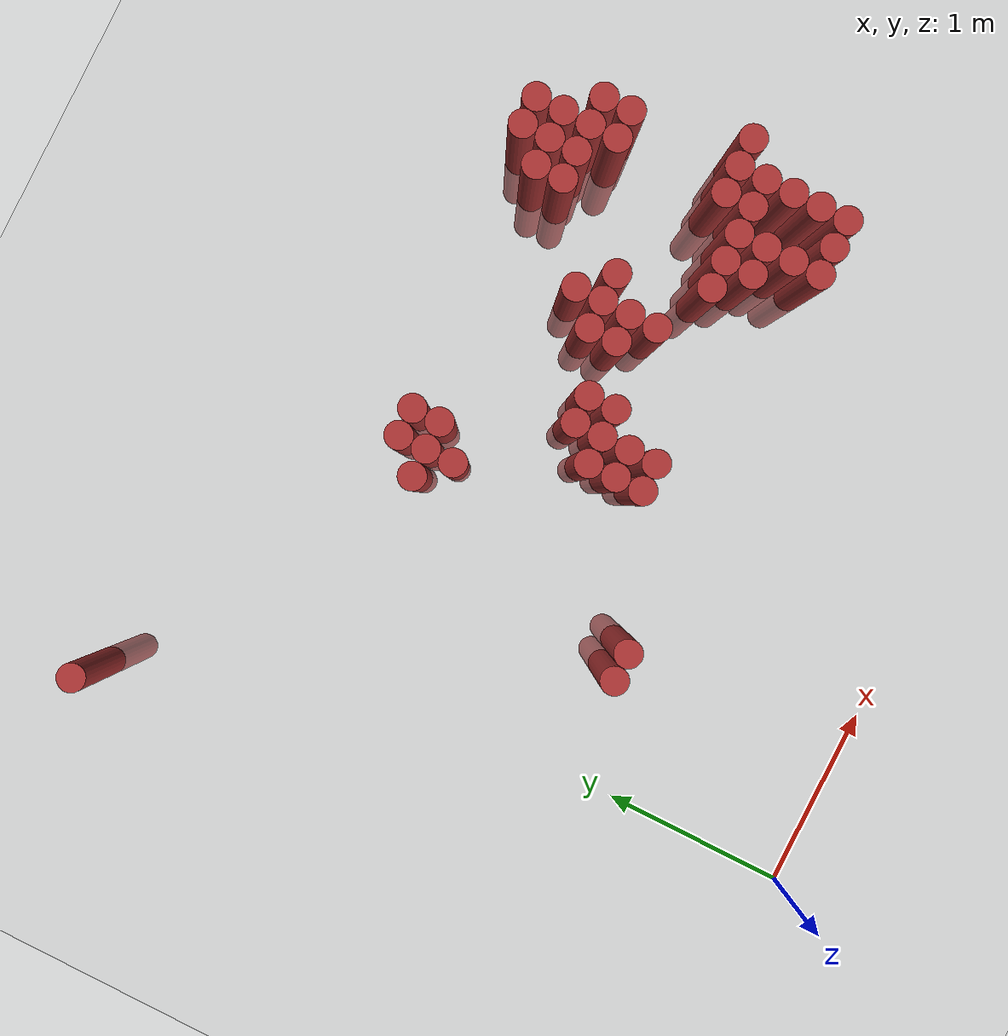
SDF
<sdf version="1.6">
 <world name="default">
  <model name="ground_plane">
   <static>1</static>
   <link name="link">
    <collision name="collision">
     <geometry><plane><normal>0 0 1</normal><size>100 100</size></plane></geometry>
     <surface><friction><ode><mu>100</mu><mu2>50</mu2></ode></friction></surface>
    </collision>
    <visual name="visual">
     <cast_shadows>0</cast_shadows>
     <geometry><plane><normal>0 0 1</normal><size>100 100</size></plane></geometry>
     <material>
      <script><uri>file://media/materials/scripts/gazebo.material</uri><name>Gazebo/Grey</name></script>
     </material>
    </visual>
   </link>
  </model>
  <model name="unit_cylinder_449">
   <static>1</static>
   <pose>-0.575000 3.775000 0.000000 0.000000 0.000000 0.000000</pose>
   <link name="link">
    <inertial>
     <mass>1</mass>
     <inertia><ixx>0.145833</ixx><ixy>0</ixy><ixz>0</ixz><iyy>0.145833</iyy><iyz>0</iyz><izz>0.125</izz></inertia>
    </inertial>
    <collision name="collision">
     <geometry><cylinder><radius>0.075000</radius><length>1.5</length></cylinder></geometry>
    </collision>
    <visual name="visual">
     <geometry><cylinder><radius>0.075000</radius><length>1.5</length></cylinder></geometry>
     <material>
      <ambient>0.648000 0.192000 0.192000 1</ambient>
      <diffuse>0.648000 0.192000 0.192000 1</diffuse>
     </material>
     <material>
      <script><name>Gazebo/Grey</name><uri>file://media/materials/scripts/gazebo.material</uri></script>
     </material>
    </visual>
   </link>
  </model>
  <model name="unit_cylinder_470">
   <static>1</static>
   <pose>0.625000 1.375000 0.000000 0.000000 0.000000 0.000000</pose>
   <link name="link">
    <inertial>
     <mass>1</mass>
     <inertia><ixx>0.145833</ixx><ixy>0</ixy><ixz>0</ixz><iyy>0.145833</iyy><iyz>0</iyz><izz>0.125</izz></inertia>
    </inertial>
    <collision name="collision">
     <geometry><cylinder><radius>0.075000</radius><length>1.5</length></cylinder></geometry>
    </collision>
    <visual name="visual">
     <geometry><cylinder><radius>0.075000</radius><length>1.5</length></cylinder></geometry>
     <material>
      <ambient>0.648000 0.192000 0.192000 1</ambient>
      <diffuse>0.648000 0.192000 0.192000 1</diffuse>
     </material>
     <material>
      <script><name>Gazebo/Grey</name><uri>file://media/materials/scripts/gazebo.material</uri></script>
     </material>
    </visual>
   </link>
  </model>
  <model name="unit_cylinder_473">
   <static>1</static>
   <pose>0.775000 1.375000 0.000000 0.000000 0.000000 0.000000</pose>
   <link name="link">
    <inertial>
     <mass>1</mass>
     <inertia><ixx>0.145833</ixx><ixy>0</ixy><ixz>0</ixz><iyy>0.145833</iyy><iyz>0</iyz><izz>0.125</izz></inertia>
    </inertial>
    <collision name="collision">
     <geometry><cylinder><radius>0.075000</radius><length>1.5</length></cylinder></geometry>
    </collision>
    <visual name="visual">
     <geometry><cylinder><radius>0.075000</radius><length>1.5</length></cylinder></geometry>
     <material>
      <ambient>0.648000 0.192000 0.192000 1</ambient>
      <diffuse>0.648000 0.192000 0.192000 1</diffuse>
     </material>
     <material>
      <script><name>Gazebo/Grey</name><uri>file://media/materials/scripts/gazebo.material</uri></script>
     </material>
    </visual>
   </link>
  </model>
  <model name="unit_cylinder_481">
   <static>1</static>
   <pose>1.075000 2.725000 0.000000 0.000000 0.000000 0.000000</pose>
   <link name="link">
    <inertial>
     <mass>1</mass>
     <inertia><ixx>0.145833</ixx><ixy>0</ixy><ixz>0</ixz><iyy>0.145833</iyy><iyz>0</iyz><izz>0.125</izz></inertia>
    </inertial>
    <collision name="collision">
     <geometry><cylinder><radius>0.075000</radius><length>1.5</length></cylinder></geometry>
    </collision>
    <visual name="visual">
     <geometry><cylinder><radius>0.075000</radius><length>1.5</length></cylinder></geometry>
     <material>
      <ambient>0.648000 0.192000 0.192000 1</ambient>
      <diffuse>0.648000 0.192000 0.192000 1</diffuse>
     </material>
     <material>
      <script><name>Gazebo/Grey</name><uri>file://media/materials/scripts/gazebo.material</uri></script>
     </material>
    </visual>
   </link>
  </model>
  <model name="unit_cylinder_488">
   <static>1</static>
   <pose>1.225000 2.575000 0.000000 0.000000 0.000000 0.000000</pose>
   <link name="link">
    <inertial>
     <mass>1</mass>
     <inertia><ixx>0.145833</ixx><ixy>0</ixy><ixz>0</ixz><iyy>0.145833</iyy><iyz>0</iyz><izz>0.125</izz></inertia>
    </inertial>
    <collision name="collision">
     <geometry><cylinder><radius>0.075000</radius><length>1.5</length></cylinder></geometry>
    </collision>
    <visual name="visual">
     <geometry><cylinder><radius>0.075000</radius><length>1.5</length></cylinder></geometry>
     <material>
      <ambient>0.648000 0.192000 0.192000 1</ambient>
      <diffuse>0.648000 0.192000 0.192000 1</diffuse>
     </material>
     <material>
      <script><name>Gazebo/Grey</name><uri>file://media/materials/scripts/gazebo.material</uri></script>
     </material>
    </visual>
   </link>
  </model>
  <model name="unit_cylinder_489">
   <static>1</static>
   <pose>1.225000 2.725000 0.000000 0.000000 0.000000 0.000000</pose>
   <link name="link">
    <inertial>
     <mass>1</mass>
     <inertia><ixx>0.145833</ixx><ixy>0</ixy><ixz>0</ixz><iyy>0.145833</iyy><iyz>0</iyz><izz>0.125</izz></inertia>
    </inertial>
    <collision name="collision">
     <geometry><cylinder><radius>0.075000</radius><length>1.5</length></cylinder></geometry>
    </collision>
    <visual name="visual">
     <geometry><cylinder><radius>0.075000</radius><length>1.5</length></cylinder></geometry>
     <material>
      <ambient>0.648000 0.192000 0.192000 1</ambient>
      <diffuse>0.648000 0.192000 0.192000 1</diffuse>
     </material>
     <material>
      <script><name>Gazebo/Grey</name><uri>file://media/materials/scripts/gazebo.material</uri></script>
     </material>
    </visual>
   </link>
  </model>
  <model name="unit_cylinder_490">
   <static>1</static>
   <pose>1.225000 2.875000 0.000000 0.000000 0.000000 0.000000</pose>
   <link name="link">
    <inertial>
     <mass>1</mass>
     <inertia><ixx>0.145833</ixx><ixy>0</ixy><ixz>0</ixz><iyy>0.145833</iyy><iyz>0</iyz><izz>0.125</izz></inertia>
    </inertial>
    <collision name="collision">
     <geometry><cylinder><radius>0.075000</radius><length>1.5</length></cylinder></geometry>
    </collision>
    <visual name="visual">
     <geometry><cylinder><radius>0.075000</radius><length>1.5</length></cylinder></geometry>
     <material>
      <ambient>0.648000 0.192000 0.192000 1</ambient>
      <diffuse>0.648000 0.192000 0.192000 1</diffuse>
     </material>
     <material>
      <script><name>Gazebo/Grey</name><uri>file://media/materials/scripts/gazebo.material</uri></script>
     </material>
    </visual>
   </link>
  </model>
  <model name="unit_cylinder_497">
   <static>1</static>
   <pose>1.375000 2.725000 0.000000 0.000000 0.000000 0.000000</pose>
   <link name="link">
    <inertial>
     <mass>1</mass>
     <inertia><ixx>0.145833</ixx><ixy>0</ixy><ixz>0</ixz><iyy>0.145833</iyy><iyz>0</iyz><izz>0.125</izz></inertia>
    </inertial>
    <collision name="collision">
     <geometry><cylinder><radius>0.075000</radius><length>1.5</length></cylinder></geometry>
    </collision>
    <visual name="visual">
     <geometry><cylinder><radius>0.075000</radius><length>1.5</length></cylinder></geometry>
     <material>
      <ambient>0.648000 0.192000 0.192000 1</ambient>
      <diffuse>0.648000 0.192000 0.192000 1</diffuse>
     </material>
     <material>
      <script><name>Gazebo/Grey</name><uri>file://media/materials/scripts/gazebo.material</uri></script>
     </material>
    </visual>
   </link>
  </model>
  <model name="unit_cylinder_498">
   <static>1</static>
   <pose>1.375000 2.875000 0.000000 0.000000 0.000000 0.000000</pose>
   <link name="link">
    <inertial>
     <mass>1</mass>
     <inertia><ixx>0.145833</ixx><ixy>0</ixy><ixz>0</ixz><iyy>0.145833</iyy><iyz>0</iyz><izz>0.125</izz></inertia>
    </inertial>
    <collision name="collision">
     <geometry><cylinder><radius>0.075000</radius><length>1.5</length></cylinder></geometry>
    </collision>
    <visual name="visual">
     <geometry><cylinder><radius>0.075000</radius><length>1.5</length></cylinder></geometry>
     <material>
      <ambient>0.648000 0.192000 0.192000 1</ambient>
      <diffuse>0.648000 0.192000 0.192000 1</diffuse>
     </material>
     <material>
      <script><name>Gazebo/Grey</name><uri>file://media/materials/scripts/gazebo.material</uri></script>
     </material>
    </visual>
   </link>
  </model>
  <model name="unit_cylinder_502">
   <static>1</static>
   <pose>1.525000 1.675000 0.000000 0.000000 0.000000 0.000000</pose>
   <link name="link">
    <inertial>
     <mass>1</mass>
     <inertia><ixx>0.145833</ixx><ixy>0</ixy><ixz>0</ixz><iyy>0.145833</iyy><iyz>0</iyz><izz>0.125</izz></inertia>
    </inertial>
    <collision name="collision">
     <geometry><cylinder><radius>0.075000</radius><length>1.5</length></cylinder></geometry>
    </collision>
    <visual name="visual">
     <geometry><cylinder><radius>0.075000</radius><length>1.5</length></cylinder></geometry>
     <material>
      <ambient>0.648000 0.192000 0.192000 1</ambient>
      <diffuse>0.648000 0.192000 0.192000 1</diffuse>
     </material>
     <material>
      <script><name>Gazebo/Grey</name><uri>file://media/materials/scripts/gazebo.material</uri></script>
     </material>
    </visual>
   </link>
  </model>
  <model name="unit_cylinder_503">
   <static>1</static>
   <pose>1.525000 1.825000 0.000000 0.000000 0.000000 0.000000</pose>
   <link name="link">
    <inertial>
     <mass>1</mass>
     <inertia><ixx>0.145833</ixx><ixy>0</ixy><ixz>0</ixz><iyy>0.145833</iyy><iyz>0</iyz><izz>0.125</izz></inertia>
    </inertial>
    <collision name="collision">
     <geometry><cylinder><radius>0.075000</radius><length>1.5</length></cylinder></geometry>
    </collision>
    <visual name="visual">
     <geometry><cylinder><radius>0.075000</radius><length>1.5</length></cylinder></geometry>
     <material>
      <ambient>0.648000 0.192000 0.192000 1</ambient>
      <diffuse>0.648000 0.192000 0.192000 1</diffuse>
     </material>
     <material>
      <script><name>Gazebo/Grey</name><uri>file://media/materials/scripts/gazebo.material</uri></script>
     </material>
    </visual>
   </link>
  </model>
  <model name="unit_cylinder_504">
   <static>1</static>
   <pose>1.525000 1.975000 0.000000 0.000000 0.000000 0.000000</pose>
   <link name="link">
    <inertial>
     <mass>1</mass>
     <inertia><ixx>0.145833</ixx><ixy>0</ixy><ixz>0</ixz><iyy>0.145833</iyy><iyz>0</iyz><izz>0.125</izz></inertia>
    </inertial>
    <collision name="collision">
     <geometry><cylinder><radius>0.075000</radius><length>1.5</length></cylinder></geometry>
    </collision>
    <visual name="visual">
     <geometry><cylinder><radius>0.075000</radius><length>1.5</length></cylinder></geometry>
     <material>
      <ambient>0.648000 0.192000 0.192000 1</ambient>
      <diffuse>0.648000 0.192000 0.192000 1</diffuse>
     </material>
     <material>
      <script><name>Gazebo/Grey</name><uri>file://media/materials/scripts/gazebo.material</uri></script>
     </material>
    </visual>
   </link>
  </model>
  <model name="unit_cylinder_507">
   <static>1</static>
   <pose>1.675000 1.675000 0.000000 0.000000 0.000000 0.000000</pose>
   <link name="link">
    <inertial>
     <mass>1</mass>
     <inertia><ixx>0.145833</ixx><ixy>0</ixy><ixz>0</ixz><iyy>0.145833</iyy><iyz>0</iyz><izz>0.125</izz></inertia>
    </inertial>
    <collision name="collision">
     <geometry><cylinder><radius>0.075000</radius><length>1.5</length></cylinder></geometry>
    </collision>
    <visual name="visual">
     <geometry><cylinder><radius>0.075000</radius><length>1.5</length></cylinder></geometry>
     <material>
      <ambient>0.648000 0.192000 0.192000 1</ambient>
      <diffuse>0.648000 0.192000 0.192000 1</diffuse>
     </material>
     <material>
      <script><name>Gazebo/Grey</name><uri>file://media/materials/scripts/gazebo.material</uri></script>
     </material>
    </visual>
   </link>
  </model>
  <model name="unit_cylinder_508">
   <static>1</static>
   <pose>1.675000 1.825000 0.000000 0.000000 0.000000 0.000000</pose>
   <link name="link">
    <inertial>
     <mass>1</mass>
     <inertia><ixx>0.145833</ixx><ixy>0</ixy><ixz>0</ixz><iyy>0.145833</iyy><iyz>0</iyz><izz>0.125</izz></inertia>
    </inertial>
    <collision name="collision">
     <geometry><cylinder><radius>0.075000</radius><length>1.5</length></cylinder></geometry>
    </collision>
    <visual name="visual">
     <geometry><cylinder><radius>0.075000</radius><length>1.5</length></cylinder></geometry>
     <material>
      <ambient>0.648000 0.192000 0.192000 1</ambient>
      <diffuse>0.648000 0.192000 0.192000 1</diffuse>
     </material>
     <material>
      <script><name>Gazebo/Grey</name><uri>file://media/materials/scripts/gazebo.material</uri></script>
     </material>
    </visual>
   </link>
  </model>
  <model name="unit_cylinder_509">
   <static>1</static>
   <pose>1.675000 1.975000 0.000000 0.000000 0.000000 0.000000</pose>
   <link name="link">
    <inertial>
     <mass>1</mass>
     <inertia><ixx>0.145833</ixx><ixy>0</ixy><ixz>0</ixz><iyy>0.145833</iyy><iyz>0</iyz><izz>0.125</izz></inertia>
    </inertial>
    <collision name="collision">
     <geometry><cylinder><radius>0.075000</radius><length>1.5</length></cylinder></geometry>
    </collision>
    <visual name="visual">
     <geometry><cylinder><radius>0.075000</radius><length>1.5</length></cylinder></geometry>
     <material>
      <ambient>0.648000 0.192000 0.192000 1</ambient>
      <diffuse>0.648000 0.192000 0.192000 1</diffuse>
     </material>
     <material>
      <script><name>Gazebo/Grey</name><uri>file://media/materials/scripts/gazebo.material</uri></script>
     </material>
    </visual>
   </link>
  </model>
  <model name="unit_cylinder_510">
   <static>1</static>
   <pose>1.675000 2.125000 0.000000 0.000000 0.000000 0.000000</pose>
   <link name="link">
    <inertial>
     <mass>1</mass>
     <inertia><ixx>0.145833</ixx><ixy>0</ixy><ixz>0</ixz><iyy>0.145833</iyy><iyz>0</iyz><izz>0.125</izz></inertia>
    </inertial>
    <collision name="collision">
     <geometry><cylinder><radius>0.075000</radius><length>1.5</length></cylinder></geometry>
    </collision>
    <visual name="visual">
     <geometry><cylinder><radius>0.075000</radius><length>1.5</length></cylinder></geometry>
     <material>
      <ambient>0.648000 0.192000 0.192000 1</ambient>
      <diffuse>0.648000 0.192000 0.192000 1</diffuse>
     </material>
     <material>
      <script><name>Gazebo/Grey</name><uri>file://media/materials/scripts/gazebo.material</uri></script>
     </material>
    </visual>
   </link>
  </model>
  <model name="unit_cylinder_518">
   <static>1</static>
   <pose>1.825000 1.975000 0.000000 0.000000 0.000000 0.000000</pose>
   <link name="link">
    <inertial>
     <mass>1</mass>
     <inertia><ixx>0.145833</ixx><ixy>0</ixy><ixz>0</ixz><iyy>0.145833</iyy><iyz>0</iyz><izz>0.125</izz></inertia>
    </inertial>
    <collision name="collision">
     <geometry><cylinder><radius>0.075000</radius><length>1.5</length></cylinder></geometry>
    </collision>
    <visual name="visual">
     <geometry><cylinder><radius>0.075000</radius><length>1.5</length></cylinder></geometry>
     <material>
      <ambient>0.648000 0.192000 0.192000 1</ambient>
      <diffuse>0.648000 0.192000 0.192000 1</diffuse>
     </material>
     <material>
      <script><name>Gazebo/Grey</name><uri>file://media/materials/scripts/gazebo.material</uri></script>
     </material>
    </visual>
   </link>
  </model>
  <model name="unit_cylinder_519">
   <static>1</static>
   <pose>1.825000 2.125000 0.000000 0.000000 0.000000 0.000000</pose>
   <link name="link">
    <inertial>
     <mass>1</mass>
     <inertia><ixx>0.145833</ixx><ixy>0</ixy><ixz>0</ixz><iyy>0.145833</iyy><iyz>0</iyz><izz>0.125</izz></inertia>
    </inertial>
    <collision name="collision">
     <geometry><cylinder><radius>0.075000</radius><length>1.5</length></cylinder></geometry>
    </collision>
    <visual name="visual">
     <geometry><cylinder><radius>0.075000</radius><length>1.5</length></cylinder></geometry>
     <material>
      <ambient>0.648000 0.192000 0.192000 1</ambient>
      <diffuse>0.648000 0.192000 0.192000 1</diffuse>
     </material>
     <material>
      <script><name>Gazebo/Grey</name><uri>file://media/materials/scripts/gazebo.material</uri></script>
     </material>
    </visual>
   </link>
  </model>
  <model name="unit_cylinder_541">
   <static>1</static>
   <pose>2.125000 2.125000 0.000000 0.000000 0.000000 0.000000</pose>
   <link name="link">
    <inertial>
     <mass>1</mass>
     <inertia><ixx>0.145833</ixx><ixy>0</ixy><ixz>0</ixz><iyy>0.145833</iyy><iyz>0</iyz><izz>0.125</izz></inertia>
    </inertial>
    <collision name="collision">
     <geometry><cylinder><radius>0.075000</radius><length>1.5</length></cylinder></geometry>
    </collision>
    <visual name="visual">
     <geometry><cylinder><radius>0.075000</radius><length>1.5</length></cylinder></geometry>
     <material>
      <ambient>0.648000 0.192000 0.192000 1</ambient>
      <diffuse>0.648000 0.192000 0.192000 1</diffuse>
     </material>
     <material>
      <script><name>Gazebo/Grey</name><uri>file://media/materials/scripts/gazebo.material</uri></script>
     </material>
    </visual>
   </link>
  </model>
  <model name="unit_cylinder_542">
   <static>1</static>
   <pose>2.125000 2.275000 0.000000 0.000000 0.000000 0.000000</pose>
   <link name="link">
    <inertial>
     <mass>1</mass>
     <inertia><ixx>0.145833</ixx><ixy>0</ixy><ixz>0</ixz><iyy>0.145833</iyy><iyz>0</iyz><izz>0.125</izz></inertia>
    </inertial>
    <collision name="collision">
     <geometry><cylinder><radius>0.075000</radius><length>1.5</length></cylinder></geometry>
    </collision>
    <visual name="visual">
     <geometry><cylinder><radius>0.075000</radius><length>1.5</length></cylinder></geometry>
     <material>
      <ambient>0.648000 0.192000 0.192000 1</ambient>
      <diffuse>0.648000 0.192000 0.192000 1</diffuse>
     </material>
     <material>
      <script><name>Gazebo/Grey</name><uri>file://media/materials/scripts/gazebo.material</uri></script>
     </material>
    </visual>
   </link>
  </model>
  <model name="unit_cylinder_546">
   <static>1</static>
   <pose>2.275000 1.975000 0.000000 0.000000 0.000000 0.000000</pose>
   <link name="link">
    <inertial>
     <mass>1</mass>
     <inertia><ixx>0.145833</ixx><ixy>0</ixy><ixz>0</ixz><iyy>0.145833</iyy><iyz>0</iyz><izz>0.125</izz></inertia>
    </inertial>
    <collision name="collision">
     <geometry><cylinder><radius>0.075000</radius><length>1.5</length></cylinder></geometry>
    </collision>
    <visual name="visual">
     <geometry><cylinder><radius>0.075000</radius><length>1.5</length></cylinder></geometry>
     <material>
      <ambient>0.648000 0.192000 0.192000 1</ambient>
      <diffuse>0.648000 0.192000 0.192000 1</diffuse>
     </material>
     <material>
      <script><name>Gazebo/Grey</name><uri>file://media/materials/scripts/gazebo.material</uri></script>
     </material>
    </visual>
   </link>
  </model>
  <model name="unit_cylinder_547">
   <static>1</static>
   <pose>2.275000 2.125000 0.000000 0.000000 0.000000 0.000000</pose>
   <link name="link">
    <inertial>
     <mass>1</mass>
     <inertia><ixx>0.145833</ixx><ixy>0</ixy><ixz>0</ixz><iyy>0.145833</iyy><iyz>0</iyz><izz>0.125</izz></inertia>
    </inertial>
    <collision name="collision">
     <geometry><cylinder><radius>0.075000</radius><length>1.5</length></cylinder></geometry>
    </collision>
    <visual name="visual">
     <geometry><cylinder><radius>0.075000</radius><length>1.5</length></cylinder></geometry>
     <material>
      <ambient>0.648000 0.192000 0.192000 1</ambient>
      <diffuse>0.648000 0.192000 0.192000 1</diffuse>
     </material>
     <material>
      <script><name>Gazebo/Grey</name><uri>file://media/materials/scripts/gazebo.material</uri></script>
     </material>
    </visual>
   </link>
  </model>
  <model name="unit_cylinder_548">
   <static>1</static>
   <pose>2.275000 2.275000 0.000000 0.000000 0.000000 0.000000</pose>
   <link name="link">
    <inertial>
     <mass>1</mass>
     <inertia><ixx>0.145833</ixx><ixy>0</ixy><ixz>0</ixz><iyy>0.145833</iyy><iyz>0</iyz><izz>0.125</izz></inertia>
    </inertial>
    <collision name="collision">
     <geometry><cylinder><radius>0.075000</radius><length>1.5</length></cylinder></geometry>
    </collision>
    <visual name="visual">
     <geometry><cylinder><radius>0.075000</radius><length>1.5</length></cylinder></geometry>
     <material>
      <ambient>0.648000 0.192000 0.192000 1</ambient>
      <diffuse>0.648000 0.192000 0.192000 1</diffuse>
     </material>
     <material>
      <script><name>Gazebo/Grey</name><uri>file://media/materials/scripts/gazebo.material</uri></script>
     </material>
    </visual>
   </link>
  </model>
  <model name="unit_cylinder_549">
   <static>1</static>
   <pose>2.275000 2.425000 0.000000 0.000000 0.000000 0.000000</pose>
   <link name="link">
    <inertial>
     <mass>1</mass>
     <inertia><ixx>0.145833</ixx><ixy>0</ixy><ixz>0</ixz><iyy>0.145833</iyy><iyz>0</iyz><izz>0.125</izz></inertia>
    </inertial>
    <collision name="collision">
     <geometry><cylinder><radius>0.075000</radius><length>1.5</length></cylinder></geometry>
    </collision>
    <visual name="visual">
     <geometry><cylinder><radius>0.075000</radius><length>1.5</length></cylinder></geometry>
     <material>
      <ambient>0.648000 0.192000 0.192000 1</ambient>
      <diffuse>0.648000 0.192000 0.192000 1</diffuse>
     </material>
     <material>
      <script><name>Gazebo/Grey</name><uri>file://media/materials/scripts/gazebo.material</uri></script>
     </material>
    </visual>
   </link>
  </model>
  <model name="unit_cylinder_558">
   <static>1</static>
   <pose>2.425000 2.275000 0.000000 0.000000 0.000000 0.000000</pose>
   <link name="link">
    <inertial>
     <mass>1</mass>
     <inertia><ixx>0.145833</ixx><ixy>0</ixy><ixz>0</ixz><iyy>0.145833</iyy><iyz>0</iyz><izz>0.125</izz></inertia>
    </inertial>
    <collision name="collision">
     <geometry><cylinder><radius>0.075000</radius><length>1.5</length></cylinder></geometry>
    </collision>
    <visual name="visual">
     <geometry><cylinder><radius>0.075000</radius><length>1.5</length></cylinder></geometry>
     <material>
      <ambient>0.648000 0.192000 0.192000 1</ambient>
      <diffuse>0.648000 0.192000 0.192000 1</diffuse>
     </material>
     <material>
      <script><name>Gazebo/Grey</name><uri>file://media/materials/scripts/gazebo.material</uri></script>
     </material>
    </visual>
   </link>
  </model>
  <model name="unit_cylinder_567">
   <static>1</static>
   <pose>2.575000 1.825000 0.000000 0.000000 0.000000 0.000000</pose>
   <link name="link">
    <inertial>
     <mass>1</mass>
     <inertia><ixx>0.145833</ixx><ixy>0</ixy><ixz>0</ixz><iyy>0.145833</iyy><iyz>0</iyz><izz>0.125</izz></inertia>
    </inertial>
    <collision name="collision">
     <geometry><cylinder><radius>0.075000</radius><length>1.5</length></cylinder></geometry>
    </collision>
    <visual name="visual">
     <geometry><cylinder><radius>0.075000</radius><length>1.5</length></cylinder></geometry>
     <material>
      <ambient>0.648000 0.192000 0.192000 1</ambient>
      <diffuse>0.648000 0.192000 0.192000 1</diffuse>
     </material>
     <material>
      <script><name>Gazebo/Grey</name><uri>file://media/materials/scripts/gazebo.material</uri></script>
     </material>
    </visual>
   </link>
  </model>
  <model name="unit_cylinder_571">
   <static>1</static>
   <pose>2.725000 1.675000 0.000000 0.000000 0.000000 0.000000</pose>
   <link name="link">
    <inertial>
     <mass>1</mass>
     <inertia><ixx>0.145833</ixx><ixy>0</ixy><ixz>0</ixz><iyy>0.145833</iyy><iyz>0</iyz><izz>0.125</izz></inertia>
    </inertial>
    <collision name="collision">
     <geometry><cylinder><radius>0.075000</radius><length>1.5</length></cylinder></geometry>
    </collision>
    <visual name="visual">
     <geometry><cylinder><radius>0.075000</radius><length>1.5</length></cylinder></geometry>
     <material>
      <ambient>0.648000 0.192000 0.192000 1</ambient>
      <diffuse>0.648000 0.192000 0.192000 1</diffuse>
     </material>
     <material>
      <script><name>Gazebo/Grey</name><uri>file://media/materials/scripts/gazebo.material</uri></script>
     </material>
    </visual>
   </link>
  </model>
  <model name="unit_cylinder_572">
   <static>1</static>
   <pose>2.725000 1.825000 0.000000 0.000000 0.000000 0.000000</pose>
   <link name="link">
    <inertial>
     <mass>1</mass>
     <inertia><ixx>0.145833</ixx><ixy>0</ixy><ixz>0</ixz><iyy>0.145833</iyy><iyz>0</iyz><izz>0.125</izz></inertia>
    </inertial>
    <collision name="collision">
     <geometry><cylinder><radius>0.075000</radius><length>1.5</length></cylinder></geometry>
    </collision>
    <visual name="visual">
     <geometry><cylinder><radius>0.075000</radius><length>1.5</length></cylinder></geometry>
     <material>
      <ambient>0.648000 0.192000 0.192000 1</ambient>
      <diffuse>0.648000 0.192000 0.192000 1</diffuse>
     </material>
     <material>
      <script><name>Gazebo/Grey</name><uri>file://media/materials/scripts/gazebo.material</uri></script>
     </material>
    </visual>
   </link>
  </model>
  <model name="unit_cylinder_573">
   <static>1</static>
   <pose>2.725000 2.725000 0.000000 0.000000 0.000000 0.000000</pose>
   <link name="link">
    <inertial>
     <mass>1</mass>
     <inertia><ixx>0.145833</ixx><ixy>0</ixy><ixz>0</ixz><iyy>0.145833</iyy><iyz>0</iyz><izz>0.125</izz></inertia>
    </inertial>
    <collision name="collision">
     <geometry><cylinder><radius>0.075000</radius><length>1.5</length></cylinder></geometry>
    </collision>
    <visual name="visual">
     <geometry><cylinder><radius>0.075000</radius><length>1.5</length></cylinder></geometry>
     <material>
      <ambient>0.648000 0.192000 0.192000 1</ambient>
      <diffuse>0.648000 0.192000 0.192000 1</diffuse>
     </material>
     <material>
      <script><name>Gazebo/Grey</name><uri>file://media/materials/scripts/gazebo.material</uri></script>
     </material>
    </visual>
   </link>
  </model>
  <model name="unit_cylinder_574">
   <static>1</static>
   <pose>2.725000 2.875000 0.000000 0.000000 0.000000 0.000000</pose>
   <link name="link">
    <inertial>
     <mass>1</mass>
     <inertia><ixx>0.145833</ixx><ixy>0</ixy><ixz>0</ixz><iyy>0.145833</iyy><iyz>0</iyz><izz>0.125</izz></inertia>
    </inertial>
    <collision name="collision">
     <geometry><cylinder><radius>0.075000</radius><length>1.5</length></cylinder></geometry>
    </collision>
    <visual name="visual">
     <geometry><cylinder><radius>0.075000</radius><length>1.5</length></cylinder></geometry>
     <material>
      <ambient>0.648000 0.192000 0.192000 1</ambient>
      <diffuse>0.648000 0.192000 0.192000 1</diffuse>
     </material>
     <material>
      <script><name>Gazebo/Grey</name><uri>file://media/materials/scripts/gazebo.material</uri></script>
     </material>
    </visual>
   </link>
  </model>
  <model name="unit_cylinder_577">
   <static>1</static>
   <pose>2.875000 1.375000 0.000000 0.000000 0.000000 0.000000</pose>
   <link name="link">
    <inertial>
     <mass>1</mass>
     <inertia><ixx>0.145833</ixx><ixy>0</ixy><ixz>0</ixz><iyy>0.145833</iyy><iyz>0</iyz><izz>0.125</izz></inertia>
    </inertial>
    <collision name="collision">
     <geometry><cylinder><radius>0.075000</radius><length>1.5</length></cylinder></geometry>
    </collision>
    <visual name="visual">
     <geometry><cylinder><radius>0.075000</radius><length>1.5</length></cylinder></geometry>
     <material>
      <ambient>0.648000 0.192000 0.192000 1</ambient>
      <diffuse>0.648000 0.192000 0.192000 1</diffuse>
     </material>
     <material>
      <script><name>Gazebo/Grey</name><uri>file://media/materials/scripts/gazebo.material</uri></script>
     </material>
    </visual>
   </link>
  </model>
  <model name="unit_cylinder_578">
   <static>1</static>
   <pose>2.875000 1.525000 0.000000 0.000000 0.000000 0.000000</pose>
   <link name="link">
    <inertial>
     <mass>1</mass>
     <inertia><ixx>0.145833</ixx><ixy>0</ixy><ixz>0</ixz><iyy>0.145833</iyy><iyz>0</iyz><izz>0.125</izz></inertia>
    </inertial>
    <collision name="collision">
     <geometry><cylinder><radius>0.075000</radius><length>1.5</length></cylinder></geometry>
    </collision>
    <visual name="visual">
     <geometry><cylinder><radius>0.075000</radius><length>1.5</length></cylinder></geometry>
     <material>
      <ambient>0.648000 0.192000 0.192000 1</ambient>
      <diffuse>0.648000 0.192000 0.192000 1</diffuse>
     </material>
     <material>
      <script><name>Gazebo/Grey</name><uri>file://media/materials/scripts/gazebo.material</uri></script>
     </material>
    </visual>
   </link>
  </model>
  <model name="unit_cylinder_579">
   <static>1</static>
   <pose>2.875000 1.675000 0.000000 0.000000 0.000000 0.000000</pose>
   <link name="link">
    <inertial>
     <mass>1</mass>
     <inertia><ixx>0.145833</ixx><ixy>0</ixy><ixz>0</ixz><iyy>0.145833</iyy><iyz>0</iyz><izz>0.125</izz></inertia>
    </inertial>
    <collision name="collision">
     <geometry><cylinder><radius>0.075000</radius><length>1.5</length></cylinder></geometry>
    </collision>
    <visual name="visual">
     <geometry><cylinder><radius>0.075000</radius><length>1.5</length></cylinder></geometry>
     <material>
      <ambient>0.648000 0.192000 0.192000 1</ambient>
      <diffuse>0.648000 0.192000 0.192000 1</diffuse>
     </material>
     <material>
      <script><name>Gazebo/Grey</name><uri>file://media/materials/scripts/gazebo.material</uri></script>
     </material>
    </visual>
   </link>
  </model>
  <model name="unit_cylinder_580">
   <static>1</static>
   <pose>2.875000 1.825000 0.000000 0.000000 0.000000 0.000000</pose>
   <link name="link">
    <inertial>
     <mass>1</mass>
     <inertia><ixx>0.145833</ixx><ixy>0</ixy><ixz>0</ixz><iyy>0.145833</iyy><iyz>0</iyz><izz>0.125</izz></inertia>
    </inertial>
    <collision name="collision">
     <geometry><cylinder><radius>0.075000</radius><length>1.5</length></cylinder></geometry>
    </collision>
    <visual name="visual">
     <geometry><cylinder><radius>0.075000</radius><length>1.5</length></cylinder></geometry>
     <material>
      <ambient>0.648000 0.192000 0.192000 1</ambient>
      <diffuse>0.648000 0.192000 0.192000 1</diffuse>
     </material>
     <material>
      <script><name>Gazebo/Grey</name><uri>file://media/materials/scripts/gazebo.material</uri></script>
     </material>
    </visual>
   </link>
  </model>
  <model name="unit_cylinder_581">
   <static>1</static>
   <pose>2.875000 2.725000 0.000000 0.000000 0.000000 0.000000</pose>
   <link name="link">
    <inertial>
     <mass>1</mass>
     <inertia><ixx>0.145833</ixx><ixy>0</ixy><ixz>0</ixz><iyy>0.145833</iyy><iyz>0</iyz><izz>0.125</izz></inertia>
    </inertial>
    <collision name="collision">
     <geometry><cylinder><radius>0.075000</radius><length>1.5</length></cylinder></geometry>
    </collision>
    <visual name="visual">
     <geometry><cylinder><radius>0.075000</radius><length>1.5</length></cylinder></geometry>
     <material>
      <ambient>0.648000 0.192000 0.192000 1</ambient>
      <diffuse>0.648000 0.192000 0.192000 1</diffuse>
     </material>
     <material>
      <script><name>Gazebo/Grey</name><uri>file://media/materials/scripts/gazebo.material</uri></script>
     </material>
    </visual>
   </link>
  </model>
  <model name="unit_cylinder_582">
   <static>1</static>
   <pose>2.875000 2.875000 0.000000 0.000000 0.000000 0.000000</pose>
   <link name="link">
    <inertial>
     <mass>1</mass>
     <inertia><ixx>0.145833</ixx><ixy>0</ixy><ixz>0</ixz><iyy>0.145833</iyy><iyz>0</iyz><izz>0.125</izz></inertia>
    </inertial>
    <collision name="collision">
     <geometry><cylinder><radius>0.075000</radius><length>1.5</length></cylinder></geometry>
    </collision>
    <visual name="visual">
     <geometry><cylinder><radius>0.075000</radius><length>1.5</length></cylinder></geometry>
     <material>
      <ambient>0.648000 0.192000 0.192000 1</ambient>
      <diffuse>0.648000 0.192000 0.192000 1</diffuse>
     </material>
     <material>
      <script><name>Gazebo/Grey</name><uri>file://media/materials/scripts/gazebo.material</uri></script>
     </material>
    </visual>
   </link>
  </model>
  <model name="unit_cylinder_583">
   <static>1</static>
   <pose>2.875000 3.025000 0.000000 0.000000 0.000000 0.000000</pose>
   <link name="link">
    <inertial>
     <mass>1</mass>
     <inertia><ixx>0.145833</ixx><ixy>0</ixy><ixz>0</ixz><iyy>0.145833</iyy><iyz>0</iyz><izz>0.125</izz></inertia>
    </inertial>
    <collision name="collision">
     <geometry><cylinder><radius>0.075000</radius><length>1.5</length></cylinder></geometry>
    </collision>
    <visual name="visual">
     <geometry><cylinder><radius>0.075000</radius><length>1.5</length></cylinder></geometry>
     <material>
      <ambient>0.648000 0.192000 0.192000 1</ambient>
      <diffuse>0.648000 0.192000 0.192000 1</diffuse>
     </material>
     <material>
      <script><name>Gazebo/Grey</name><uri>file://media/materials/scripts/gazebo.material</uri></script>
     </material>
    </visual>
   </link>
  </model>
  <model name="unit_cylinder_590">
   <static>1</static>
   <pose>3.025000 1.375000 0.000000 0.000000 0.000000 0.000000</pose>
   <link name="link">
    <inertial>
     <mass>1</mass>
     <inertia><ixx>0.145833</ixx><ixy>0</ixy><ixz>0</ixz><iyy>0.145833</iyy><iyz>0</iyz><izz>0.125</izz></inertia>
    </inertial>
    <collision name="collision">
     <geometry><cylinder><radius>0.075000</radius><length>1.5</length></cylinder></geometry>
    </collision>
    <visual name="visual">
     <geometry><cylinder><radius>0.075000</radius><length>1.5</length></cylinder></geometry>
     <material>
      <ambient>0.648000 0.192000 0.192000 1</ambient>
      <diffuse>0.648000 0.192000 0.192000 1</diffuse>
     </material>
     <material>
      <script><name>Gazebo/Grey</name><uri>file://media/materials/scripts/gazebo.material</uri></script>
     </material>
    </visual>
   </link>
  </model>
  <model name="unit_cylinder_591">
   <static>1</static>
   <pose>3.025000 1.825000 0.000000 0.000000 0.000000 0.000000</pose>
   <link name="link">
    <inertial>
     <mass>1</mass>
     <inertia><ixx>0.145833</ixx><ixy>0</ixy><ixz>0</ixz><iyy>0.145833</iyy><iyz>0</iyz><izz>0.125</izz></inertia>
    </inertial>
    <collision name="collision">
     <geometry><cylinder><radius>0.075000</radius><length>1.5</length></cylinder></geometry>
    </collision>
    <visual name="visual">
     <geometry><cylinder><radius>0.075000</radius><length>1.5</length></cylinder></geometry>
     <material>
      <ambient>0.648000 0.192000 0.192000 1</ambient>
      <diffuse>0.648000 0.192000 0.192000 1</diffuse>
     </material>
     <material>
      <script><name>Gazebo/Grey</name><uri>file://media/materials/scripts/gazebo.material</uri></script>
     </material>
    </visual>
   </link>
  </model>
  <model name="unit_cylinder_592">
   <static>1</static>
   <pose>3.025000 1.975000 0.000000 0.000000 0.000000 0.000000</pose>
   <link name="link">
    <inertial>
     <mass>1</mass>
     <inertia><ixx>0.145833</ixx><ixy>0</ixy><ixz>0</ixz><iyy>0.145833</iyy><iyz>0</iyz><izz>0.125</izz></inertia>
    </inertial>
    <collision name="collision">
     <geometry><cylinder><radius>0.075000</radius><length>1.5</length></cylinder></geometry>
    </collision>
    <visual name="visual">
     <geometry><cylinder><radius>0.075000</radius><length>1.5</length></cylinder></geometry>
     <material>
      <ambient>0.648000 0.192000 0.192000 1</ambient>
      <diffuse>0.648000 0.192000 0.192000 1</diffuse>
     </material>
     <material>
      <script><name>Gazebo/Grey</name><uri>file://media/materials/scripts/gazebo.material</uri></script>
     </material>
    </visual>
   </link>
  </model>
  <model name="unit_cylinder_593">
   <static>1</static>
   <pose>3.025000 2.575000 0.000000 0.000000 0.000000 0.000000</pose>
   <link name="link">
    <inertial>
     <mass>1</mass>
     <inertia><ixx>0.145833</ixx><ixy>0</ixy><ixz>0</ixz><iyy>0.145833</iyy><iyz>0</iyz><izz>0.125</izz></inertia>
    </inertial>
    <collision name="collision">
     <geometry><cylinder><radius>0.075000</radius><length>1.5</length></cylinder></geometry>
    </collision>
    <visual name="visual">
     <geometry><cylinder><radius>0.075000</radius><length>1.5</length></cylinder></geometry>
     <material>
      <ambient>0.648000 0.192000 0.192000 1</ambient>
      <diffuse>0.648000 0.192000 0.192000 1</diffuse>
     </material>
     <material>
      <script><name>Gazebo/Grey</name><uri>file://media/materials/scripts/gazebo.material</uri></script>
     </material>
    </visual>
   </link>
  </model>
  <model name="unit_cylinder_594">
   <static>1</static>
   <pose>3.025000 2.725000 0.000000 0.000000 0.000000 0.000000</pose>
   <link name="link">
    <inertial>
     <mass>1</mass>
     <inertia><ixx>0.145833</ixx><ixy>0</ixy><ixz>0</ixz><iyy>0.145833</iyy><iyz>0</iyz><izz>0.125</izz></inertia>
    </inertial>
    <collision name="collision">
     <geometry><cylinder><radius>0.075000</radius><length>1.5</length></cylinder></geometry>
    </collision>
    <visual name="visual">
     <geometry><cylinder><radius>0.075000</radius><length>1.5</length></cylinder></geometry>
     <material>
      <ambient>0.648000 0.192000 0.192000 1</ambient>
      <diffuse>0.648000 0.192000 0.192000 1</diffuse>
     </material>
     <material>
      <script><name>Gazebo/Grey</name><uri>file://media/materials/scripts/gazebo.material</uri></script>
     </material>
    </visual>
   </link>
  </model>
  <model name="unit_cylinder_595">
   <static>1</static>
   <pose>3.025000 2.875000 0.000000 0.000000 0.000000 0.000000</pose>
   <link name="link">
    <inertial>
     <mass>1</mass>
     <inertia><ixx>0.145833</ixx><ixy>0</ixy><ixz>0</ixz><iyy>0.145833</iyy><iyz>0</iyz><izz>0.125</izz></inertia>
    </inertial>
    <collision name="collision">
     <geometry><cylinder><radius>0.075000</radius><length>1.5</length></cylinder></geometry>
    </collision>
    <visual name="visual">
     <geometry><cylinder><radius>0.075000</radius><length>1.5</length></cylinder></geometry>
     <material>
      <ambient>0.648000 0.192000 0.192000 1</ambient>
      <diffuse>0.648000 0.192000 0.192000 1</diffuse>
     </material>
     <material>
      <script><name>Gazebo/Grey</name><uri>file://media/materials/scripts/gazebo.material</uri></script>
     </material>
    </visual>
   </link>
  </model>
  <model name="unit_cylinder_596">
   <static>1</static>
   <pose>3.025000 3.025000 0.000000 0.000000 0.000000 0.000000</pose>
   <link name="link">
    <inertial>
     <mass>1</mass>
     <inertia><ixx>0.145833</ixx><ixy>0</ixy><ixz>0</ixz><iyy>0.145833</iyy><iyz>0</iyz><izz>0.125</izz></inertia>
    </inertial>
    <collision name="collision">
     <geometry><cylinder><radius>0.075000</radius><length>1.5</length></cylinder></geometry>
    </collision>
    <visual name="visual">
     <geometry><cylinder><radius>0.075000</radius><length>1.5</length></cylinder></geometry>
     <material>
      <ambient>0.648000 0.192000 0.192000 1</ambient>
      <diffuse>0.648000 0.192000 0.192000 1</diffuse>
     </material>
     <material>
      <script><name>Gazebo/Grey</name><uri>file://media/materials/scripts/gazebo.material</uri></script>
     </material>
    </visual>
   </link>
  </model>
  <model name="unit_cylinder_605">
   <static>1</static>
   <pose>3.175000 1.375000 0.000000 0.000000 0.000000 0.000000</pose>
   <link name="link">
    <inertial>
     <mass>1</mass>
     <inertia><ixx>0.145833</ixx><ixy>0</ixy><ixz>0</ixz><iyy>0.145833</iyy><iyz>0</iyz><izz>0.125</izz></inertia>
    </inertial>
    <collision name="collision">
     <geometry><cylinder><radius>0.075000</radius><length>1.5</length></cylinder></geometry>
    </collision>
    <visual name="visual">
     <geometry><cylinder><radius>0.075000</radius><length>1.5</length></cylinder></geometry>
     <material>
      <ambient>0.648000 0.192000 0.192000 1</ambient>
      <diffuse>0.648000 0.192000 0.192000 1</diffuse>
     </material>
     <material>
      <script><name>Gazebo/Grey</name><uri>file://media/materials/scripts/gazebo.material</uri></script>
     </material>
    </visual>
   </link>
  </model>
  <model name="unit_cylinder_606">
   <static>1</static>
   <pose>3.175000 1.525000 0.000000 0.000000 0.000000 0.000000</pose>
   <link name="link">
    <inertial>
     <mass>1</mass>
     <inertia><ixx>0.145833</ixx><ixy>0</ixy><ixz>0</ixz><iyy>0.145833</iyy><iyz>0</iyz><izz>0.125</izz></inertia>
    </inertial>
    <collision name="collision">
     <geometry><cylinder><radius>0.075000</radius><length>1.5</length></cylinder></geometry>
    </collision>
    <visual name="visual">
     <geometry><cylinder><radius>0.075000</radius><length>1.5</length></cylinder></geometry>
     <material>
      <ambient>0.648000 0.192000 0.192000 1</ambient>
      <diffuse>0.648000 0.192000 0.192000 1</diffuse>
     </material>
     <material>
      <script><name>Gazebo/Grey</name><uri>file://media/materials/scripts/gazebo.material</uri></script>
     </material>
    </visual>
   </link>
  </model>
  <model name="unit_cylinder_607">
   <static>1</static>
   <pose>3.175000 1.675000 0.000000 0.000000 0.000000 0.000000</pose>
   <link name="link">
    <inertial>
     <mass>1</mass>
     <inertia><ixx>0.145833</ixx><ixy>0</ixy><ixz>0</ixz><iyy>0.145833</iyy><iyz>0</iyz><izz>0.125</izz></inertia>
    </inertial>
    <collision name="collision">
     <geometry><cylinder><radius>0.075000</radius><length>1.5</length></cylinder></geometry>
    </collision>
    <visual name="visual">
     <geometry><cylinder><radius>0.075000</radius><length>1.5</length></cylinder></geometry>
     <material>
      <ambient>0.648000 0.192000 0.192000 1</ambient>
      <diffuse>0.648000 0.192000 0.192000 1</diffuse>
     </material>
     <material>
      <script><name>Gazebo/Grey</name><uri>file://media/materials/scripts/gazebo.material</uri></script>
     </material>
    </visual>
   </link>
  </model>
  <model name="unit_cylinder_608">
   <static>1</static>
   <pose>3.175000 1.825000 0.000000 0.000000 0.000000 0.000000</pose>
   <link name="link">
    <inertial>
     <mass>1</mass>
     <inertia><ixx>0.145833</ixx><ixy>0</ixy><ixz>0</ixz><iyy>0.145833</iyy><iyz>0</iyz><izz>0.125</izz></inertia>
    </inertial>
    <collision name="collision">
     <geometry><cylinder><radius>0.075000</radius><length>1.5</length></cylinder></geometry>
    </collision>
    <visual name="visual">
     <geometry><cylinder><radius>0.075000</radius><length>1.5</length></cylinder></geometry>
     <material>
      <ambient>0.648000 0.192000 0.192000 1</ambient>
      <diffuse>0.648000 0.192000 0.192000 1</diffuse>
     </material>
     <material>
      <script><name>Gazebo/Grey</name><uri>file://media/materials/scripts/gazebo.material</uri></script>
     </material>
    </visual>
   </link>
  </model>
  <model name="unit_cylinder_609">
   <static>1</static>
   <pose>3.175000 1.975000 0.000000 0.000000 0.000000 0.000000</pose>
   <link name="link">
    <inertial>
     <mass>1</mass>
     <inertia><ixx>0.145833</ixx><ixy>0</ixy><ixz>0</ixz><iyy>0.145833</iyy><iyz>0</iyz><izz>0.125</izz></inertia>
    </inertial>
    <collision name="collision">
     <geometry><cylinder><radius>0.075000</radius><length>1.5</length></cylinder></geometry>
    </collision>
    <visual name="visual">
     <geometry><cylinder><radius>0.075000</radius><length>1.5</length></cylinder></geometry>
     <material>
      <ambient>0.648000 0.192000 0.192000 1</ambient>
      <diffuse>0.648000 0.192000 0.192000 1</diffuse>
     </material>
     <material>
      <script><name>Gazebo/Grey</name><uri>file://media/materials/scripts/gazebo.material</uri></script>
     </material>
    </visual>
   </link>
  </model>
  <model name="unit_cylinder_610">
   <static>1</static>
   <pose>3.175000 2.575000 0.000000 0.000000 0.000000 0.000000</pose>
   <link name="link">
    <inertial>
     <mass>1</mass>
     <inertia><ixx>0.145833</ixx><ixy>0</ixy><ixz>0</ixz><iyy>0.145833</iyy><iyz>0</iyz><izz>0.125</izz></inertia>
    </inertial>
    <collision name="collision">
     <geometry><cylinder><radius>0.075000</radius><length>1.5</length></cylinder></geometry>
    </collision>
    <visual name="visual">
     <geometry><cylinder><radius>0.075000</radius><length>1.5</length></cylinder></geometry>
     <material>
      <ambient>0.648000 0.192000 0.192000 1</ambient>
      <diffuse>0.648000 0.192000 0.192000 1</diffuse>
     </material>
     <material>
      <script><name>Gazebo/Grey</name><uri>file://media/materials/scripts/gazebo.material</uri></script>
     </material>
    </visual>
   </link>
  </model>
  <model name="unit_cylinder_611">
   <static>1</static>
   <pose>3.175000 2.725000 0.000000 0.000000 0.000000 0.000000</pose>
   <link name="link">
    <inertial>
     <mass>1</mass>
     <inertia><ixx>0.145833</ixx><ixy>0</ixy><ixz>0</ixz><iyy>0.145833</iyy><iyz>0</iyz><izz>0.125</izz></inertia>
    </inertial>
    <collision name="collision">
     <geometry><cylinder><radius>0.075000</radius><length>1.5</length></cylinder></geometry>
    </collision>
    <visual name="visual">
     <geometry><cylinder><radius>0.075000</radius><length>1.5</length></cylinder></geometry>
     <material>
      <ambient>0.648000 0.192000 0.192000 1</ambient>
      <diffuse>0.648000 0.192000 0.192000 1</diffuse>
     </material>
     <material>
      <script><name>Gazebo/Grey</name><uri>file://media/materials/scripts/gazebo.material</uri></script>
     </material>
    </visual>
   </link>
  </model>
  <model name="unit_cylinder_624">
   <static>1</static>
   <pose>3.325000 1.975000 0.000000 0.000000 0.000000 0.000000</pose>
   <link name="link">
    <inertial>
     <mass>1</mass>
     <inertia><ixx>0.145833</ixx><ixy>0</ixy><ixz>0</ixz><iyy>0.145833</iyy><iyz>0</iyz><izz>0.125</izz></inertia>
    </inertial>
    <collision name="collision">
     <geometry><cylinder><radius>0.075000</radius><length>1.5</length></cylinder></geometry>
    </collision>
    <visual name="visual">
     <geometry><cylinder><radius>0.075000</radius><length>1.5</length></cylinder></geometry>
     <material>
      <ambient>0.648000 0.192000 0.192000 1</ambient>
      <diffuse>0.648000 0.192000 0.192000 1</diffuse>
     </material>
     <material>
      <script><name>Gazebo/Grey</name><uri>file://media/materials/scripts/gazebo.material</uri></script>
     </material>
    </visual>
   </link>
  </model>
 </world>
</sdf>
